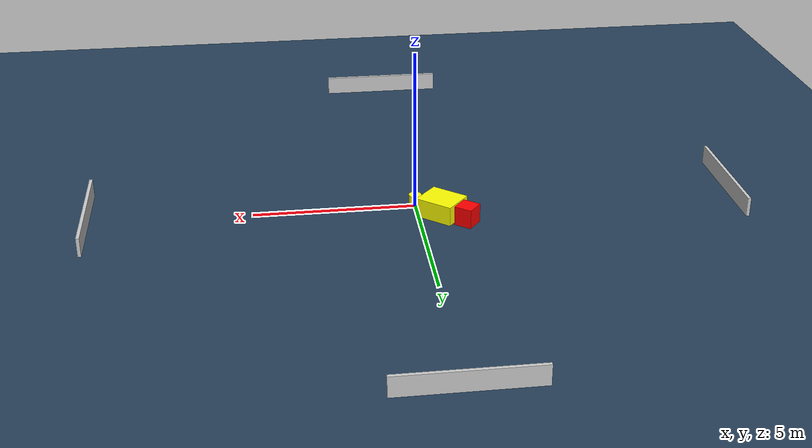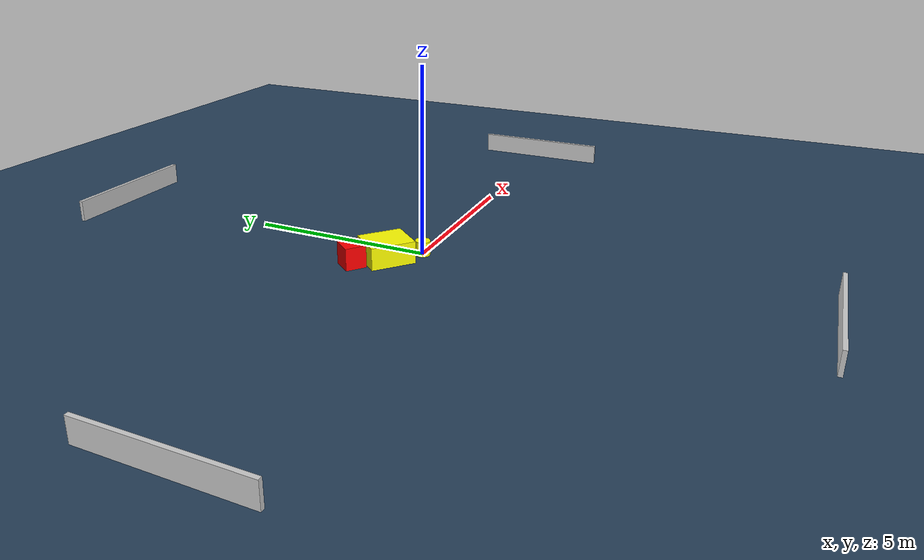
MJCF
<?xml version="1.0" ?>
<mujoco model="generated_environment">
  <option timestep="0.01" integrator="RK4" cone="elliptic"/>
  <default>
    <geom density="1"/>
  </default>
  <asset>
    <texture builtin="gradient" height="3072" name="skybox" rgb1="0.3 0.5 0.7" rgb2="0 0 0" type="skybox" width="512"/>
    <texture builtin="checker" height="300" name="groundplane" rgb1="0.2 0.3 0.4" rgb2="0.1 0.2 0.3" type="2d" width="300"/>
    <material name="groundplane" reflectance="0.2" texrepeat="5 5" texture="groundplane"/>
  </asset>
  <worldbody>
    <light dir="0 0 -1" directional="true" pos="0 0 1.5"/>
    <geom condim="3" friction="0.5 0.005 0.001" material="groundplane" name="floor" pos="0 0 0" size="0 0 0.05" type="plane"/>
    <body name="walls">
      <geom name="wall_1" condim="4" pos="-10.0 0.0 0.3" rgba="0.800000011920929 0.800000011920929 0.800000011920929 1.0" size="0.05 2.0 0.3" type="box"/>
      <geom name="wall_2" condim="4" pos="10.0 0.0 0.3" rgba="0.800000011920929 0.800000011920929 0.800000011920929 1.0" size="0.05 2.0 0.3" type="box"/>
      <geom name="wall_3" condim="4" pos="0.0 -10.0 0.3" rgba="0.800000011920929 0.800000011920929 0.800000011920929 1.0" size="2.0 0.05 0.3" type="box"/>
      <geom name="wall_4" condim="4" pos="0.0 10.0 0.3" rgba="0.800000011920929 0.800000011920929 0.800000011920929 1.0" size="2.0 0.05 0.3" type="box"/>
    </body>
    <body name="robot">
      <joint name="joint_x" type="slide" pos="0 0 0" axis="1 0 0"/>
      <joint name="joint_y" type="slide" pos="0 0 0" axis="0 1 0"/>
      <geom name="robot" type="cylinder" pos="0.0 0.0 0.2" size="0.2 0.2 0.0" mass="5.0" friction="1.0 0.005 0.0001" condim="4" rgba="1.0 1.0 0.0 1.0"/>
    </body>
    <body name="obstacle_1_movable">
      <geom name="obstacle_1_movable" condim="4" pos="-0.7269438038423689 0.7013197377272171 0.3" euler="0 0 49.61565316284475" friction="0.0 0.005 0.001" rgba="1.0 1.0 0.0 1.0" size="0.5033181022411405 0.6038107452770755 0.3" type="box" mass="0.1"/>
      <joint type="free"/>
    </body>
    <body name="obstacle_2_static">
      <geom name="obstacle_2_static" condim="4" pos="-1.406204387644995 1.3432178467818525 0.3" euler="0 0 231.91659278408733" friction="0.0 0.005 0.001" rgba="1.0 0.0 0.0 1.0" size="0.2897716233740405 0.27992356357905623 0.3" type="box"/>
    </body>
  </worldbody>
  <actuator>
    <motor name="actuator_x" joint="joint_x" gear="1" ctrlrange="-1 1"/>
    <motor name="actuator_y" joint="joint_y" gear="1" ctrlrange="-1 1"/>
  </actuator>
</mujoco>
